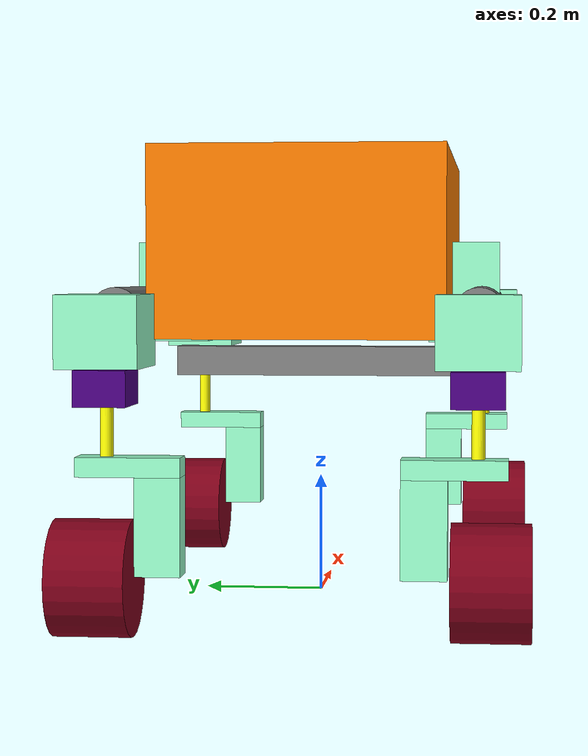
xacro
<?xml version="1.0"?>
<robot xmlns:xacro="http://www.ros.org/wiki/xacro" name="hubba">

    <material name="white">
        <color rgba="1 1 1 1"/>
    </material>
    <material name="yellow">
        <color rgba="1 1 0 1"/>
    </material>
    <material name="vine_red">
        <color rgba="0.5 0.0 0.1 1.0"/>
    </material>
    <material name="indigo">
        <color rgba="0.29 0.0 0.51 1.0"/>
    </material>
    <material name="metallic_grey">
        <color rgba="0.5 0.5 0.5 1.0"/>
    </material>
    <material name="transparent_black">
        <color rgba="1.0 0.5 0.0 1.0"/>
    </material>
    <material name="mint_green">
        <color rgba="0.6 1.0 0.8 1.0"/>
    </material>
    <material name="black">
        <color rgba="0 0 0 1"/>
    </material>

<link name="base_footprint"/>

    <joint name="base_footprint_to_base_link" type="fixed">
        <parent link="base_footprint"/>
        <child link="base_link"/>
        <origin xyz="0 0 0.0" rpy="0 0 ${-pi/2}"/>
    </joint>
<!-- ${pi/2} -->
    <link name="base_link">
        <visual>
            <geometry><box size="0.46 0.85 0.3" /></geometry>
            <origin xyz="0 0 0.60" rpy="0 0 0" />
            <material name="transparent_black" />
        </visual>
        <collision>
            <geometry><box size="0.46 0.85 0.3" /></geometry>
            <origin xyz="0 0 0.60" rpy="0 0 0" />
        </collision>
        <inertial>
            <mass value="56.0"/>
            <origin xyz="0 0 0.60" rpy="0 0 0"/>
            <inertia ixx="4.91" ixy="0" ixz="0" iyy="2.33" iyz="0" izz="6.40"/>
        </inertial>
    </link>
    <gazebo reference="base_link">
        <material>Gazebo/Orange</material> </gazebo>

    <link name="diff_bar">
        <visual>
            <geometry><box size="0.05 0.50 0.05" /></geometry>
            <origin xyz="0 0 0" rpy="0 0 0" />
            <material name="metallic_grey" />
        </visual>
        <collision>
            <geometry><box size="0.05 0.50 0.05" /></geometry>
            <origin xyz="0 0 0" rpy="0 0 0" />
        </collision>
        <inertial>
            <mass value="0.5"/>
            <inertia ixx="0.03" ixy="0" ixz="0" iyy="0.001" iyz="0" izz="0.03"/>
        </inertial>
    </link>
    <gazebo reference="diff_bar"><material>Gazebo/Grey</material></gazebo>

    <joint name="base_to_diff_bar" type="fixed">
        <parent link="base_link"/>
        <child link="diff_bar"/>
        <origin xyz="0 0 0.40" rpy="0 0 ${pi/2}"/>
    </joint>

    <xacro:macro name="wheel_assembly" params="prefix suffix parent_link reflect_x reflect_y">
        <link name="${prefix}_${suffix}_kutu">
            <visual>
                <geometry><box size="0.125 0.15 0.11" /></geometry>
                <material name="mint_green" />
            </visual>
            <collision>
                <geometry><box size="0.125 0.15 0.11" /></geometry>
            </collision>
            <inertial>
                <mass value="0.5"/>
                <inertia ixx="0.002" ixy="0" ixz="0" iyy="0.002" iyz="0" izz="0.002"/>
            </inertial>
        </link>

        <link name="${prefix}_${suffix}_gearbox">
            <visual>
                <geometry><box size="0.08 0.10 0.055" /></geometry>
                <material name="indigo" />
            </visual>
            <collision>
                 <geometry><box size="0.08 0.10 0.055" /></geometry>
            </collision>
            <inertial>
                <mass value="0.5"/>
                <inertia ixx="0.001" ixy="0" ixz="0" iyy="0.001" iyz="0" izz="0.001"/>
            </inertial>
        </link>

        <link name="${prefix}_${suffix}_mil">
            <visual>
                <geometry><cylinder radius="0.01" length="0.12"/></geometry>
                <origin xyz="0 0 0" rpy="0 0 ${pi/2}" />
                <material name="yellow" />
            </visual>
            <collision>
                <geometry><cylinder radius="0.01" length="0.12"/></geometry>
                <origin xyz="0 0 0" rpy="0 0 ${pi/2}" />
            </collision>
            <inertial>
                <mass value="0.2"/>
                <inertia ixx="0.001" ixy="0" ixz="0" iyy="0.001" iyz="0" izz="0.001"/>
            </inertial>
        </link>

        <link name="${prefix}_${suffix}_steering">
            <visual>
                <geometry><box size="0.16 0.05 0.03" /></geometry>
                <material name="mint_green" />
            </visual>
            <collision>
                <geometry><box size="0.16 0.05 0.03" /></geometry>
            </collision>
            <inertial>
                <mass value="0.2"/>
                <inertia ixx="0.001" ixy="0" ixz="0" iyy="0.001" iyz="0" izz="0.001"/>
            </inertial>
        </link>

        <link name="${prefix}_${suffix}_drive_prf">
            <visual>
                <geometry><box size="0.07 0.05 0.15" /></geometry>
                <material name="mint_green" />
            </visual>
            <collision>
                <geometry><box size="0.07 0.05 0.15" /></geometry>
            </collision>
            <inertial>
                <mass value="0.5"/>
                <inertia ixx="0.002" ixy="0" ixz="0" iyy="0.002" iyz="0" izz="0.002"/>
            </inertial>
        </link>

        <link name="${prefix}_${suffix}_wheel">
            <visual>
                <geometry><cylinder radius="0.09" length="0.12"/></geometry>
                <origin xyz="0 0 0" rpy="0 ${pi/2} 0" />
                <material name="vine_red" />
            </visual>
            <collision>
                <geometry><cylinder radius="0.09" length="0.12"/></geometry>
                <origin xyz="0 0 0" rpy="0 ${pi/2} 0" />
            </collision>
            <inertial>
                <mass value="3.0"/>
                <origin xyz="0 0 0" rpy="0 ${pi/2} 0"/>
                <inertia ixx="0.05" ixy="0" ixz="0" iyy="0.05" iyz="0" izz="0.05"/>
            </inertial>
        </link>

        <gazebo reference="${prefix}_${suffix}_wheel">
            <material>Gazebo/Red</material>
            <mu1>1.0</mu1>
            <mu2>1.0</mu2>
            <kp>1000000.0</kp>
            <kd>10000.0</kd>
        </gazebo>

        <joint name="${parent_link}_to_${prefix}_${suffix}_kutu" type="fixed">
            <parent link="${parent_link}"/>
            <child link="${prefix}_${suffix}_kutu"/>
            <origin xyz="0 ${0.4925 * reflect_x} -0.025" rpy="0 0 0"/>
        </joint>

        <joint name="${prefix}_${suffix}_kutu_to_gearbox" type="fixed">
            <parent link="${prefix}_${suffix}_kutu"/>
            <child link="${prefix}_${suffix}_gearbox"/>
            <origin xyz="0 0 -0.085" rpy="0 0 0"/>
        </joint>

        <joint name="${prefix}_${suffix}_gearbox_to_mil" type="continuous">
            <parent link="${prefix}_${suffix}_gearbox"/>
            <child link="${prefix}_${suffix}_mil"/>
            <axis xyz="0 0 1"/>
            <origin xyz="0 ${-0.01 * reflect_x} -0.06" rpy="0 0 0"/>
        </joint>

        <joint name="${prefix}_${suffix}_mil_to_steering" type="fixed">
            <parent link="${prefix}_${suffix}_mil"/>
            <child link="${prefix}_${suffix}_steering"/>
            <origin xyz="${-0.035 * reflect_y} 0 -0.06" rpy="0 0 0"/>
        </joint>

        <joint name="${prefix}_${suffix}_steering_to_drive" type="fixed">
            <parent link="${prefix}_${suffix}_steering"/>
            <child link="${prefix}_${suffix}_drive_prf"/>
            <origin xyz="${-0.045 * reflect_y} 0 -0.09" rpy="0 0 0"/>
        </joint>

        <joint name="${prefix}_${suffix}_drive_to_wheel" type="continuous">
            <parent link="${prefix}_${suffix}_drive_prf"/>
            <child link="${prefix}_${suffix}_wheel"/>
            <axis xyz="1 0 0"/>
            <origin xyz="${0.10 * reflect_y} 0 -0.08" rpy="0 0 0"/>
        </joint>
    </xacro:macro>

    <xacro:macro name="rover_leg" params="prefix reflect_y">
        <link name="${prefix}_legmil">
            <visual>
                <geometry><cylinder radius="0.03" length="0.1"/></geometry>
                <origin xyz="0 0 0" rpy="0 ${pi/2} 0" />
                <material name="white" />
            </visual>
            <collision>
                <geometry><cylinder radius="0.03" length="0.1"/></geometry>
                <origin xyz="0 0 0" rpy="0 ${pi/2} 0" />
            </collision>
            <inertial>
                <mass value="1.0"/>
                <inertia ixx="0.01" ixy="0" ixz="0" iyy="0.01" iyz="0" izz="0.01"/>
            </inertial>
        </link>

        <link name="${prefix}_prfleg">
            <visual>
                <geometry><box size="0.12 0.12 0.17" /></geometry>
                <material name="mint_green" />
            </visual>
            <collision>
                <geometry><box size="0.12 0.12 0.17" /></geometry>
            </collision>
            <inertial>
                <mass value="1.0"/>
                <inertia ixx="0.01" ixy="0" ixz="0" iyy="0.01" iyz="0" izz="0.01"/>
            </inertial>
        </link>

        <link name="${prefix}_bacak">
            <visual>
                <geometry><cylinder radius="0.04" length="0.835"/></geometry>
                <origin xyz="0 0 0" rpy="${pi/2} 0 0" />
                <material name="metallic_grey" />
            </visual>
            <collision>
                <geometry><cylinder radius="0.04" length="0.835"/></geometry>
                <origin xyz="0 0 0" rpy="${pi/2} 0 0" />
            </collision>
             <inertial>
                <mass value="3.0"/>
                <inertia ixx="0.1" ixy="0" ixz="0" iyy="0.1" iyz="0" izz="0.1"/>
            </inertial>
        </link>

        <joint name="base_to_${prefix}_legmil" type="fixed">
            <parent link="base_link"/>
            <child link="${prefix}_legmil"/>
            <origin xyz="${0.25 * reflect_y} 0 0.57" rpy="0 0 0"/>
        </joint>

        <joint name="${prefix}_legmil_to_prf" type="fixed">
            <parent link="${prefix}_legmil"/>
            <child link="${prefix}_prfleg"/>
            <origin xyz="0 0 -0.05" rpy="0 0 0"/>
        </joint>

        <joint name="${prefix}_prf_to_bacak" type="fixed">
            <parent link="${prefix}_prfleg"/>
            <child link="${prefix}_bacak"/>
            <origin xyz="${0.03 * reflect_y} 0 -0.03" rpy="0 0 0"/>
        </joint>
    </xacro:macro>

    <xacro:rover_leg prefix="sag" reflect_y="1" />
    <xacro:wheel_assembly prefix="sag" suffix="on" parent_link="sag_bacak" reflect_x="1" reflect_y="1" />
    <xacro:wheel_assembly prefix="sag" suffix="arka" parent_link="sag_bacak" reflect_x="-1" reflect_y="1" />

    <xacro:rover_leg prefix="sol" reflect_y="-1" />
    <xacro:wheel_assembly prefix="sol" suffix="on" parent_link="sol_bacak" reflect_x="1" reflect_y="-1" />
    <xacro:wheel_assembly prefix="sol" suffix="arka" parent_link="sol_bacak" reflect_x="-1" reflect_y="-1" />

    <link name="zed_camera_link">
        <visual>
            <geometry><box size="0.033 0.175 0.03" /></geometry>
            <material name="black"/>
        </visual>
        <collision>
            <geometry><box size="0.033 0.175 0.03" /></geometry>
        </collision>
        <inertial>
            <mass value="0.16"/>
            <inertia ixx="0.0001" ixy="0" ixz="0" iyy="0.0001" iyz="0" izz="0.0001"/>
        </inertial>
    </link>
    <gazebo reference="zed_camera_link"><material>Gazebo/Black</material></gazebo>

    <joint name="base_to_zed2" type="fixed">
        <parent link="base_link"/>
        <child link="zed_camera_link"/>
        <origin xyz="0 0.49 0.6" rpy="0 0 ${pi/2}"/>
    </joint>

    <link name="zed2_camera_optical_frame"/>

    <joint name="zed2_optical_joint" type="fixed">
        <parent link="zed_camera_link"/>
        <child link="zed2_camera_optical_frame"/>
        <origin xyz="0 0 0" rpy="${-pi/2} 0 ${-pi/2}"/>
    </joint>

    <!-- ZED 2 CAMERA (PHYSICAL)                        -->
    <!-- The zed-ros2-wrapper will publish              -->
    <!-- /zed2/zed_node/imu/data and                    -->
    <!-- /zed2/zed_node/odom  (Visual Odometry)         -->
    <!-- Not - ZED 2 URDF is usually provided by their  -->
    <!-- package, but keeping base mount links here.    -->

    <!-- GPS SENSOR (PHYSICAL)                          -->
    <!-- Mount position for U-blox or NMEA GPS antenna. -->
    <!-- NMEA driver will publish /gps/fix              -->

    <!-- REAL HARDWARE INTERFACE (ros2_control)         -->
    <!-- Replace "gazebo_ros2_control/GazeboSystem"     -->
    <!-- with your actual hardware plugin written in C++-->
    <!-- e.g., "my_robot_hardware/MyRobotHardware"      -->
    <ros2_control name="RealRobotSystem" type="system">
        <hardware>
            <!-- C++ veya Micro-ROS kullanilan donanim arayuzu plugin adi yazilacak orn robot_hardware/RoverHardwareInterface -->
        </hardware>
        <joint name="sol_on_drive_to_wheel">
            <command_interface name="velocity"/>
            <state_interface name="velocity"/>
            <state_interface name="position"/>
         </joint>
        <joint name="sag_on_drive_to_wheel">
            <command_interface name="velocity"/>
            <state_interface name="velocity"/>
            <state_interface name="position"/>
        </joint>
        <joint name="sol_arka_drive_to_wheel">
            <command_interface name="velocity"/>
            <state_interface name="velocity"/>
            <state_interface name="position"/>
        </joint>
        <joint name="sag_arka_drive_to_wheel">
            <command_interface name="velocity"/>
            <state_interface name="velocity"/>
            <state_interface name="position"/>
        </joint>

        <joint name="sol_on_gearbox_to_mil">
            <command_interface name="position"/>
            <state_interface name="position"/>
        </joint>
        <joint name="sag_on_gearbox_to_mil">
            <command_interface name="position"/>
            <state_interface name="position"/>
        </joint>
        <joint name="sol_arka_gearbox_to_mil">
            <command_interface name="position"/>
            <state_interface name="position"/>
        </joint>
        <joint name="sag_arka_gearbox_to_mil">
            <command_interface name="position"/>
            <state_interface name="position"/>
        </joint>
    </ros2_control>

</robot>
